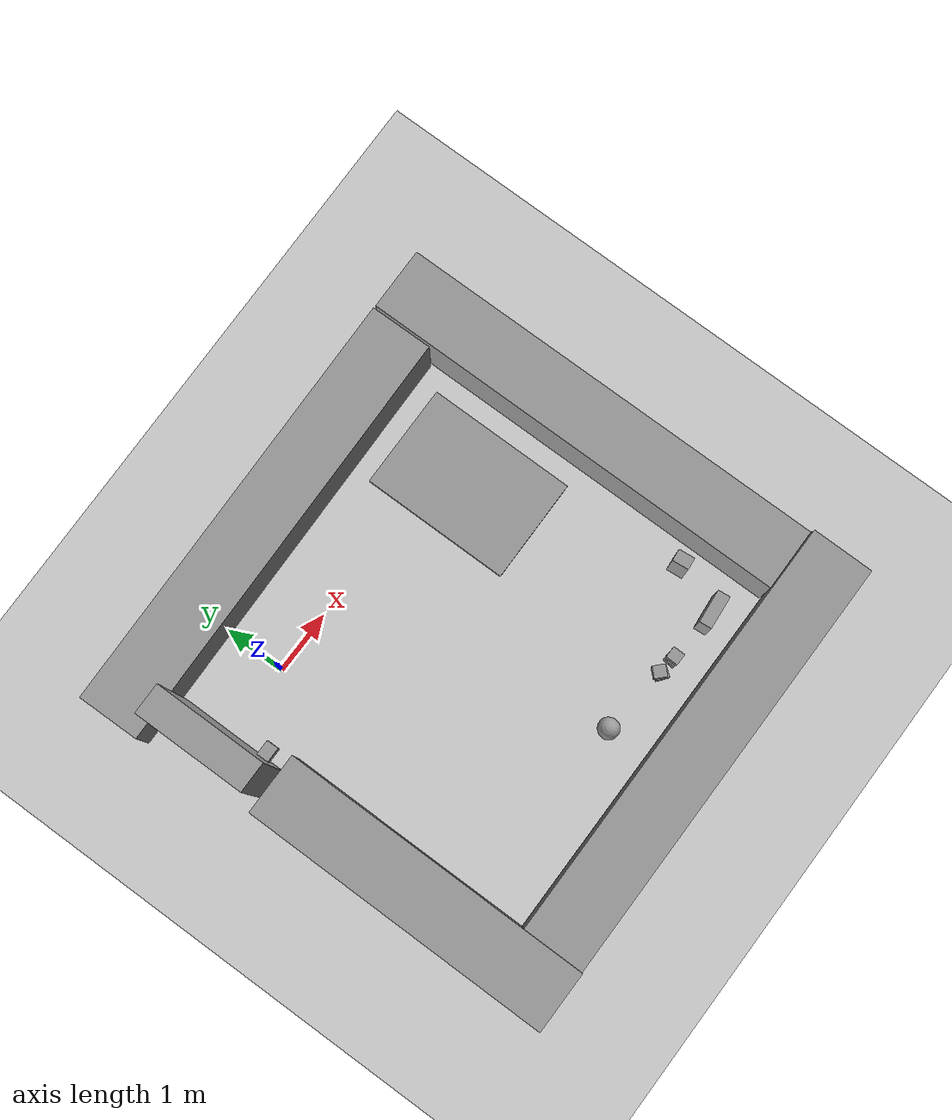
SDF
<sdf version="1.6">
 <world name="default">
  <light name="sun" type="directional">
   <pose>0 0 10 0 -0 0</pose>
   <diffuse>0.8 0.8 0.8 1</diffuse>
   <specular>0.1 0.1 0.1 1</specular>
   <attenuation>
    <range>1000</range>
    <constant>0.9</constant>
    <linear>0.01</linear>
    <quadratic>0.001</quadratic>
   </attenuation>
   <direction>-0.5 0.5 -1</direction>
  </light>
  <model name="ground_plane">
   <static>1</static>
   <link name="link">
    <collision name="collision">
     <geometry><plane><normal>0 0 1</normal><size>100 100</size></plane></geometry>
     <surface><friction><ode><mu>100</mu><mu2>50</mu2></ode></friction></surface>
    </collision>
    <visual name="visual">
     <cast_shadows>0</cast_shadows>
     <geometry><plane><normal>0 0 1</normal><size>100 100</size></plane></geometry>
     <material>
      <script><uri>file://media/materials/scripts/gazebo.material</uri><name>Gazebo/Grey</name></script>
     </material>
    </visual>
   </link>
  </model>
  <gravity>0 0 -9.8</gravity>
  <magnetic_field>6e-06 2.3e-05 -4.2e-05</magnetic_field>
  <atmosphere type="adiabatic"/>
  <physics name="default_physics" default="0" type="ode">
   <max_step_size>0.001</max_step_size>
   <real_time_factor>1</real_time_factor>
   <real_time_update_rate>1000</real_time_update_rate>
  </physics>
  <scene><ambient>0.4 0.4 0.4 1</ambient><background>0.7 0.7 0.7 1</background><shadows>1</shadows></scene>
  <spherical_coordinates>
   <surface_model>EARTH_WGS84</surface_model>
   <latitude_deg>0</latitude_deg>
   <longitude_deg>0</longitude_deg>
   <elevation>0</elevation>
   <heading_deg>0</heading_deg>
  </spherical_coordinates>
  <model name="unit_box_0_clone_0">
   <pose>2.5837 -5.54161 0.499995 0 -1e-06 -0.002556</pose>
   <link name="link">
    <inertial>
     <mass>1</mass>
     <inertia><ixx>0</ixx><ixy>0</ixy><ixz>0</ixz><iyy>0</iyy><iyz>0</iyz><izz>0</izz></inertia>
    </inertial>
    <collision name="collision"><geometry><box><size>6.99949 1 1</size></box></geometry></collision>
    <visual name="visual">
     <geometry><box><size>6.99949 1 1</size></box></geometry>
     <material>
      <script><name>Gazebo/Grey</name><uri>file://media/materials/scripts/gazebo.material</uri></script>
     </material>
    </visual>
   </link>
  </model>
  <model name="unit_box_0_clone_clone">
   <pose>5.51985 -1.52948 0.5 0 0 -1.56879</pose>
   <link name="link">
    <inertial>
     <mass>1</mass>
     <inertia><ixx>0</ixx><ixy>0</ixy><ixz>0</ixz><iyy>0</iyy><iyz>0</iyz><izz>0</izz></inertia>
    </inertial>
    <collision name="collision"><geometry><box><size>6.99949 1 1</size></box></geometry></collision>
    <visual name="visual">
     <geometry><box><size>6.99949 1 1</size></box></geometry>
     <material>
      <script><name>Gazebo/Grey</name><uri>file://media/materials/scripts/gazebo.material</uri></script>
     </material>
    </visual>
   </link>
  </model>
  <model name="unit_box_1_clone">
   <pose>3.52253 -4.52123 0.069791 9.3e-05 0.000152 -0.091273</pose>
   <link name="unit_box_1_clone::unit_box_1_clone::link">
    <inertial>
     <mass>1</mass>
     <inertia><ixx>0</ixx><ixy>0</ixy><ixz>0</ixz><iyy>0</iyy><iyz>0</iyz><izz>0</izz></inertia>
    </inertial>
    <collision name="collision"><geometry><box><size>0.191631 0.199809 0.1656</size></box></geometry></collision>
    <visual name="visual">
     <geometry><box><size>0.191631 0.199809 0.1656</size></box></geometry>
     <material>
      <script><name>Gazebo/Grey</name><uri>file://media/materials/scripts/gazebo.material</uri></script>
     </material>
    </visual>
   </link>
  </model>
  <model name="unit_sphere_0">
   <pose>2.1278 -4.36385 0.170052 -0.01416 0.000776 0.003057</pose>
   <link name="link">
    <inertial>
     <mass>1</mass>
     <inertia><ixx>0</ixx><ixy>0</ixy><ixz>0</ixz><iyy>0</iyy><iyz>0</iyz><izz>0</izz></inertia>
    </inertial>
    <collision name="collision"><geometry><sphere><radius>0.170052</radius></sphere></geometry></collision>
    <visual name="visual">
     <geometry><sphere><radius>0.170052</radius></sphere></geometry>
     <material>
      <script><name>Gazebo/Grey</name><uri>file://media/materials/scripts/gazebo.material</uri></script>
     </material>
    </visual>
   </link>
  </model>
  <model name="unit_box_1_clone_clone_clone">
   <pose>3.24532 -4.50598 0.082791 5e-06 -3e-06 0.888769</pose>
   <link name="unit_box_1_clone_clone_clone::unit_box_1_clone_clone_clone::unit_box_1_clone_clone::unit_box_1_clone_clone::link">
    <inertial>
     <mass>1</mass>
     <inertia><ixx>0</ixx><ixy>0</ixy><ixz>0</ixz><iyy>0</iyy><iyz>0</iyz><izz>0</izz></inertia>
    </inertial>
    <collision name="collision"><geometry><box><size>0.191631 0.199809 0.1656</size></box></geometry></collision>
    <visual name="visual">
     <geometry><box><size>0.191631 0.199809 0.1656</size></box></geometry>
     <material>
      <script><name>Gazebo/Grey</name><uri>file://media/materials/scripts/gazebo.material</uri></script>
     </material>
    </visual>
   </link>
  </model>
  <model name="unit_box_1_clone_clone_clone_0">
   <pose>4.36149 -4.57855 0.363141 0 9e-06 0.090494</pose>
   <link name="unit_box_1_clone_clone::unit_box_1_clone_clone::link">
    <inertial>
     <mass>1</mass>
     <inertia><ixx>0</ixx><ixy>0</ixy><ixz>0</ixz><iyy>0</iyy><iyz>0</iyz><izz>0</izz></inertia>
    </inertial>
    <collision name="collision">
     <geometry><box><size>0.538131 0.199809 0.726287</size></box></geometry>
    </collision>
    <visual name="visual">
     <geometry><box><size>0.538131 0.199809 0.726287</size></box></geometry>
     <material>
      <script><name>Gazebo/Grey</name><uri>file://media/materials/scripts/gazebo.material</uri></script>
     </material>
    </visual>
   </link>
  </model>
  <model name="unit_box_1_clone_clone_clone_1">
   <pose>4.6689 -3.79634 0.406679 0 1e-06 0.091058</pose>
   <link name="unit_box_1_clone_clone::unit_box_1_clone_clone::link">
    <inertial>
     <mass>1</mass>
     <inertia><ixx>0</ixx><ixy>0</ixy><ixz>0</ixz><iyy>0</iyy><iyz>0</iyz><izz>0</izz></inertia>
    </inertial>
    <collision name="collision">
     <geometry><box><size>0.191631 0.262789 0.813359</size></box></geometry>
    </collision>
    <visual name="visual">
     <geometry><box><size>0.191631 0.262789 0.813359</size></box></geometry>
     <material>
      <script><name>Gazebo/Grey</name><uri>file://media/materials/scripts/gazebo.material</uri></script>
     </material>
    </visual>
   </link>
  </model>
  <model name="unit_box_2">
   <pose>-1.40944 -3.51646 0.5 0 0 -0.004096</pose>
   <link name="link">
    <inertial>
     <mass>1</mass>
     <inertia><ixx>0</ixx><ixy>0</ixy><ixz>0</ixz><iyy>0</iyy><iyz>0</iyz><izz>0</izz></inertia>
    </inertial>
    <collision name="collision"><geometry><box><size>1 5.05969 1</size></box></geometry></collision>
    <visual name="visual">
     <geometry><box><size>1 5.05969 1</size></box></geometry>
     <material>
      <script><name>Gazebo/Grey</name><uri>file://media/materials/scripts/gazebo.material</uri></script>
     </material>
    </visual>
   </link>
  </model>
  <model name="unit_box_0_clone_0_clone">
   <pose>1.47465 1.44601 0.5 0 -0 0.008743</pose>
   <link name="link">
    <inertial>
     <mass>1</mass>
     <inertia><ixx>0</ixx><ixy>0</ixy><ixz>0</ixz><iyy>0</iyy><iyz>0</iyz><izz>0</izz></inertia>
    </inertial>
    <collision name="collision"><geometry><box><size>6.99949 1 1</size></box></geometry></collision>
    <visual name="visual">
     <geometry><box><size>6.99949 1 1</size></box></geometry>
     <material>
      <script><name>Gazebo/Grey</name><uri>file://media/materials/scripts/gazebo.material</uri></script>
     </material>
    </visual>
   </link>
  </model>
  <model name="unit_box_0">
   <pose>-1.42427 -0.028473 1.21559 3e-06 1e-06 -4.2e-05</pose>
   <link name="unit_box_0::link">
    <inertial>
     <mass>1</mass>
     <inertia><ixx>0</ixx><ixy>0</ixy><ixz>0</ixz><iyy>0</iyy><iyz>0</iyz><izz>0</izz></inertia>
    </inertial>
    <collision name="collision"><geometry><box><size>0.487774 1.77265 2.43119</size></box></geometry></collision>
    <visual name="visual">
     <geometry><box><size>0.487774 1.77265 2.43119</size></box></geometry>
     <material>
      <script><name>Gazebo/Grey</name><uri>file://media/materials/scripts/gazebo.material</uri></script>
     </material>
    </visual>
   </link>
  </model>
  <model name="unit_box_1">
   <pose>-1.05257 -0.721728 1.23516 0 -0 0</pose>
   <link name="unit_box_1::link">
    <inertial>
     <mass>1</mass>
     <inertia><ixx>0</ixx><ixy>0</ixy><ixz>0</ixz><iyy>0</iyy><iyz>0</iyz><izz>0</izz></inertia>
    </inertial>
    <collision name="collision">
     <geometry><box><size>0.238713 0.191816 0.190692</size></box></geometry>
    </collision>
    <visual name="visual">
     <geometry><box><size>0.238713 0.191816 0.190692</size></box></geometry>
     <material>
      <script><name>Gazebo/Grey</name><uri>file://media/materials/scripts/gazebo.material</uri></script>
     </material>
    </visual>
    <gravity>0</gravity>
   </link>
  </model>
  <model name="unit_box_3">
   <pose>4.34567 0.257588 0.400153 -1e-06 -0 0.003326</pose>
   <link name="link">
    <inertial>
     <mass>1</mass>
     <inertia><ixx>0</ixx><ixy>0</ixy><ixz>0</ixz><iyy>0</iyy><iyz>0</iyz><izz>0</izz></inertia>
    </inertial>
    <collision name="collision"><geometry><box><size>0.19265 0.218178 0.800307</size></box></geometry></collision>
    <visual name="visual">
     <geometry><box><size>0.19265 0.218178 0.800307</size></box></geometry>
     <material>
      <script><name>Gazebo/Grey</name><uri>file://media/materials/scripts/gazebo.material</uri></script>
     </material>
    </visual>
   </link>
  </model>
  <model name="unit_box_3_clone">
   <pose>4.32579 -1.58309 0.400144 -2e-06 -0 0.000617</pose>
   <link name="link">
    <inertial>
     <mass>1</mass>
     <inertia><ixx>0</ixx><ixy>0</ixy><ixz>0</ixz><iyy>0</iyy><iyz>0</iyz><izz>0</izz></inertia>
    </inertial>
    <collision name="collision"><geometry><box><size>0.19265 0.218179 0.800307</size></box></geometry></collision>
    <visual name="visual">
     <geometry><box><size>0.19265 0.218179 0.800307</size></box></geometry>
     <material>
      <script><name>Gazebo/Grey</name><uri>file://media/materials/scripts/gazebo.material</uri></script>
     </material>
    </visual>
   </link>
  </model>
  <model name="unit_box_3_clone_0">
   <pose>3.18754 -1.5592 0.400143 -0 -1e-06 0.000952</pose>
   <link name="link">
    <inertial>
     <mass>1</mass>
     <inertia><ixx>0</ixx><ixy>0</ixy><ixz>0</ixz><iyy>0</iyy><iyz>0</iyz><izz>0</izz></inertia>
    </inertial>
    <collision name="collision"><geometry><box><size>0.19265 0.218179 0.800307</size></box></geometry></collision>
    <visual name="visual">
     <geometry><box><size>0.19265 0.218179 0.800307</size></box></geometry>
     <material>
      <script><name>Gazebo/Grey</name><uri>file://media/materials/scripts/gazebo.material</uri></script>
     </material>
    </visual>
   </link>
  </model>
  <model name="unit_box_3_clone_1">
   <pose>3.20029 0.240968 0.400142 -1e-06 -0 -0.000304</pose>
   <link name="link">
    <inertial>
     <mass>1</mass>
     <inertia><ixx>0</ixx><ixy>0</ixy><ixz>0</ixz><iyy>0</iyy><iyz>0</iyz><izz>0</izz></inertia>
    </inertial>
    <collision name="collision"><geometry><box><size>0.19265 0.218179 0.800307</size></box></geometry></collision>
    <visual name="visual">
     <geometry><box><size>0.19265 0.218179 0.800307</size></box></geometry>
     <material>
      <script><name>Gazebo/Grey</name><uri>file://media/materials/scripts/gazebo.material</uri></script>
     </material>
    </visual>
   </link>
  </model>
  <model name="unit_box_4">
   <pose>3.72062 -0.654936 0.824651 4e-06 -1.2e-05 -6.9e-05</pose>
   <link name="link">
    <inertial>
     <mass>1</mass>
     <inertia><ixx>0</ixx><ixy>0</ixy><ixz>0</ixz><iyy>0</iyy><iyz>0</iyz><izz>0</izz></inertia>
    </inertial>
    <collision name="collision"><geometry><box><size>1.63338 2.34753 0.048709</size></box></geometry></collision>
    <visual name="visual">
     <geometry><box><size>1.63338 2.34753 0.048709</size></box></geometry>
     <material>
      <script><name>Gazebo/Grey</name><uri>file://media/materials/scripts/gazebo.material</uri></script>
     </material>
    </visual>
   </link>
  </model>
  <model name="unit_box_1_clone_clone_clone_clone">
   <pose>3.22465 -4.47203 0.248386 -3.2e-05 2.7e-05 0.792161</pose>
   <link name="unit_box_1_clone_clone_clone_clone::unit_box_1_clone_clone_clone::unit_box_1_clone_clone::unit_box_1_clone_clone::link">
    <inertial>
     <mass>1</mass>
     <inertia><ixx>0</ixx><ixy>0</ixy><ixz>0</ixz><iyy>0</iyy><iyz>0</iyz><izz>0</izz></inertia>
    </inertial>
    <collision name="collision"><geometry><box><size>0.191631 0.199809 0.1656</size></box></geometry></collision>
    <visual name="visual">
     <geometry><box><size>0.191631 0.199809 0.1656</size></box></geometry>
     <material>
      <script><name>Gazebo/Grey</name><uri>file://media/materials/scripts/gazebo.material</uri></script>
     </material>
    </visual>
   </link>
  </model>
  <model name="unit_box_1_clone_clone_0">
   <pose>3.5459 -4.52549 0.235359 0.000104 0.000142 -0.013237</pose>
   <link name="unit_box_1_clone_clone_0::unit_box_1_clone::link">
    <inertial>
     <mass>1</mass>
     <inertia><ixx>0</ixx><ixy>0</ixy><ixz>0</ixz><iyy>0</iyy><iyz>0</iyz><izz>0</izz></inertia>
    </inertial>
    <collision name="collision"><geometry><box><size>0.191631 0.199809 0.1656</size></box></geometry></collision>
    <visual name="visual">
     <geometry><box><size>0.191631 0.199809 0.1656</size></box></geometry>
     <material>
      <script><name>Gazebo/Grey</name><uri>file://media/materials/scripts/gazebo.material</uri></script>
     </material>
    </visual>
   </link>
  </model>
 </world>
</sdf>
